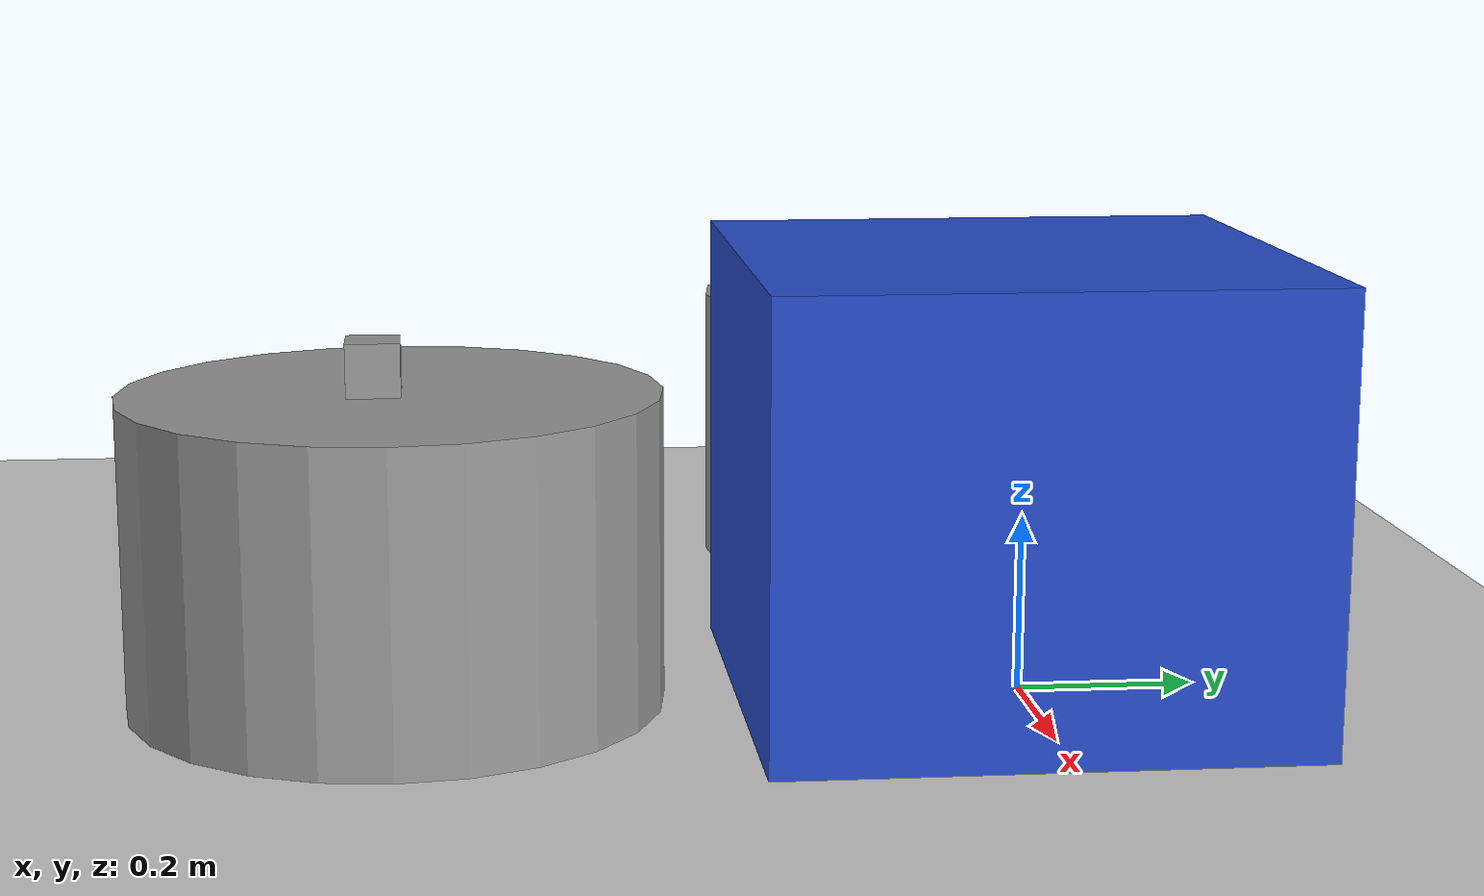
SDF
<sdf version="1.7">
 <world name="default">
  <turnGravityOff>true</turnGravityOff>
  <light name="sun" type="directional">
   <pose>0 0 10 0 -0 0</pose>
   <diffuse>0.8 0.8 0.8 1</diffuse>
   <specular>0.2 0.2 0.2 1</specular>
   <attenuation>
    <range>1000</range>
    <constant>0.9</constant>
    <linear>0.01</linear>
    <quadratic>0.001</quadratic>
   </attenuation>
   <direction>-0.5 0.1 -0.9</direction>
   <spot><inner_angle>0</inner_angle><outer_angle>0</outer_angle><falloff>0</falloff></spot>
  </light>
  <model name="ground_plane">
   <static>1</static>
   <link name="link">
    <collision name="collision">
     <geometry><plane><normal>0 0 1</normal><size>100 100</size></plane></geometry>
     <surface>
      <contact><collide_bitmask>65535</collide_bitmask></contact>
      <friction><ode><mu>100</mu><mu2>50</mu2></ode></friction>
     </surface>
    </collision>
    <visual name="visual">
     <cast_shadows>0</cast_shadows>
     <geometry><plane><normal>0 0 1</normal><size>100 100</size></plane></geometry>
     <material>
      <script><uri>file://media/materials/scripts/gazebo.material</uri><name>Gazebo/Grey</name></script>
     </material>
    </visual>
   </link>
  </model>
  <gravity>0 0 -9.8</gravity>
  <magnetic_field>6e-06 2.3e-05 -4.2e-05</magnetic_field>
  <atmosphere type="adiabatic"/>
  <physics type="ode">
   <max_step_size>0.001</max_step_size>
   <real_time_factor>1</real_time_factor>
   <real_time_update_rate>1000</real_time_update_rate>
  </physics>
  <scene><ambient>0.4 0.4 0.4 1</ambient><background>0.7 0.7 0.7 1</background><shadows>1</shadows></scene>
  <spherical_coordinates>
   <surface_model>EARTH_WGS84</surface_model>
   <latitude_deg>0</latitude_deg>
   <longitude_deg>0</longitude_deg>
   <elevation>0</elevation>
   <heading_deg>0</heading_deg>
  </spherical_coordinates>
  <model name="unit_boxx">
   <link name="link">
    <inertial>
     <mass>1</mass>
     <inertia>
      <ixx>0.166667</ixx>
      <ixy>0</ixy>
      <ixz>0</ixz>
      <iyy>0.166667</iyy>
      <iyz>0</iyz>
      <izz>0.166667</izz>
     </inertia>
    </inertial>
    <visual name="visual">
     <geometry><box><size>0.6 0.6 0.5</size></box></geometry>
     <material>
      <script><name>Gazebo/Blue</name><uri>file://media/materials/scripts/gazebo.material</uri></script>
      <shader type="pixel"><normal_map>__default__</normal_map></shader>
      <ambient>0.3 0.3 0.3 1</ambient>
      <diffuse>0.7 0.7 0.7 1</diffuse>
      <specular>0.01 0.01 0.01 1</specular>
      <emissive>0 0 0 1</emissive>
     </material>
     <pose>0 0 -0.25 0 -0 0</pose>
    </visual>
    <collision name="collision">
     <pose>0 0 -0.25 0 -0 0</pose>
     <geometry><box><size>0.6 0.6 0.5</size></box></geometry>
     <surface>
      <friction>
       <ode><mu>1</mu><mu2>1</mu2><fdir1>0 0 0</fdir1><slip1>0</slip1><slip2>0</slip2></ode>
       <torsional>
        <coefficient>1</coefficient>
        <patch_radius>0</patch_radius>
        <surface_radius>0</surface_radius>
        <use_patch_radius>1</use_patch_radius>
        <ode><slip>0</slip></ode>
       </torsional>
      </friction>
      <bounce><restitution_coefficient>0</restitution_coefficient><threshold>1e+06</threshold></bounce>
      <contact>
       <collide_without_contact>0</collide_without_contact>
       <collide_without_contact_bitmask>1</collide_without_contact_bitmask>
       <collide_bitmask>1</collide_bitmask>
       <ode>
        <soft_cfm>0</soft_cfm>
        <soft_erp>0.2</soft_erp>
        <kp>1e+13</kp>
        <kd>1</kd>
        <max_vel>0.01</max_vel>
        <min_depth>0</min_depth>
       </ode>
       <bullet>
        <split_impulse>1</split_impulse>
        <split_impulse_penetration_threshold>-0.01</split_impulse_penetration_threshold>
        <soft_cfm>0</soft_cfm>
        <soft_erp>0.2</soft_erp>
        <kp>1e+13</kp>
        <kd>1</kd>
       </bullet>
      </contact>
     </surface>
    </collision>
   </link>
   <static>1</static>
   <pose>0.00872 -0.022663 0.5 0 -0 0</pose>
  </model>
  <model name="mini">
   <link name="link">
    <inertial>
     <mass>1</mass>
     <inertia>
      <ixx>0.166667</ixx>
      <ixy>0</ixy>
      <ixz>0</ixz>
      <iyy>0.166667</iyy>
      <iyz>0</iyz>
      <izz>0.166667</izz>
     </inertia>
    </inertial>
    <visual name="visual">
     <geometry><box><size>0.06 0.06 0.06</size></box></geometry>
     <material>
      <script><name>Gazebo/Grey</name><uri>file://media/materials/scripts/gazebo.material</uri></script>
      <shader type="pixel"><normal_map>__default__</normal_map></shader>
      <ambient>0.3 0.3 0.3 1</ambient>
      <diffuse>0.7 0.7 0.7 1</diffuse>
      <specular>0.01 0.01 0.01 1</specular>
      <emissive>0 0 0 1</emissive>
     </material>
    </visual>
    <collision name="collision">
     <geometry><box><size>0.06 0.06 0.06</size></box></geometry>
     <surface>
      <friction>
       <ode><mu>1</mu><mu2>1</mu2><fdir1>0 0 0</fdir1><slip1>0</slip1><slip2>0</slip2></ode>
       <torsional>
        <coefficient>1</coefficient>
        <patch_radius>0</patch_radius>
        <surface_radius>0</surface_radius>
        <use_patch_radius>1</use_patch_radius>
        <ode><slip>0</slip></ode>
       </torsional>
      </friction>
      <bounce><restitution_coefficient>0</restitution_coefficient><threshold>1e+06</threshold></bounce>
      <contact>
       <collide_without_contact>0</collide_without_contact>
       <collide_without_contact_bitmask>1</collide_without_contact_bitmask>
       <collide_bitmask>1</collide_bitmask>
       <ode>
        <soft_cfm>0</soft_cfm>
        <soft_erp>0.2</soft_erp>
        <kp>1e+13</kp>
        <kd>1</kd>
        <max_vel>0.01</max_vel>
        <min_depth>0</min_depth>
       </ode>
       <bullet>
        <split_impulse>1</split_impulse>
        <split_impulse_penetration_threshold>-0.01</split_impulse_penetration_threshold>
        <soft_cfm>0</soft_cfm>
        <soft_erp>0.2</soft_erp>
        <kp>1e+13</kp>
        <kd>1</kd>
       </bullet>
      </contact>
     </surface>
    </collision>
   </link>
   <static>0</static>
   <pose>-0.013351 -0.719948 0.379933 1.7e-05 1.8e-05 -0.001517</pose>
  </model>
  <model name="unit_cylinder_clone1">
   <link name="link">
    <inertial>
     <mass>1</mass>
     <inertia><ixx>0.145833</ixx><ixy>0</ixy><ixz>0</ixz><iyy>0.145833</iyy><iyz>0</iyz><izz>0.125</izz></inertia>
    </inertial>
    <visual name="visual">
     <geometry><cylinder><radius>0.3</radius><length>0.35</length></cylinder></geometry>
     <material>
      <script><name>Gazebo/Grey</name><uri>file://media/materials/scripts/gazebo.material</uri></script>
      <shader type="pixel"><normal_map>__default__</normal_map></shader>
      <ambient>0.3 0.3 0.3 1</ambient>
      <diffuse>0.7 0.7 0.7 1</diffuse>
      <specular>0.01 0.01 0.01 1</specular>
      <emissive>0 0 0 1</emissive>
     </material>
     <pose>0 0 -0.325 0 -0 0</pose>
    </visual>
    <collision name="collision">
     <pose>0 0 -0.325 0 -0 0</pose>
     <geometry><cylinder><radius>0.3</radius><length>0.35</length></cylinder></geometry>
     <surface>
      <friction>
       <ode><mu>1</mu><mu2>1</mu2><fdir1>0 0 0</fdir1><slip1>0</slip1><slip2>0</slip2></ode>
       <torsional>
        <coefficient>1</coefficient>
        <patch_radius>0</patch_radius>
        <surface_radius>0</surface_radius>
        <use_patch_radius>1</use_patch_radius>
        <ode><slip>0</slip></ode>
       </torsional>
      </friction>
      <bounce><restitution_coefficient>0</restitution_coefficient><threshold>1e+06</threshold></bounce>
      <contact>
       <collide_without_contact>0</collide_without_contact>
       <collide_without_contact_bitmask>1</collide_without_contact_bitmask>
       <collide_bitmask>1</collide_bitmask>
       <ode>
        <soft_cfm>0</soft_cfm>
        <soft_erp>0.2</soft_erp>
        <kp>1e+13</kp>
        <kd>1</kd>
        <max_vel>0.01</max_vel>
        <min_depth>0</min_depth>
       </ode>
       <bullet>
        <split_impulse>1</split_impulse>
        <split_impulse_penetration_threshold>-0.01</split_impulse_penetration_threshold>
        <soft_cfm>0</soft_cfm>
        <soft_erp>0.2</soft_erp>
        <kp>1e+13</kp>
        <kd>1</kd>
       </bullet>
      </contact>
     </surface>
    </collision>
   </link>
   <static>0</static>
   <pose>-0.700267 0.011643 0.499998 -1e-06 -1e-06 0</pose>
  </model>
  <model name="unit_cylinder_clone1_clone">
   <link name="link">
    <inertial>
     <mass>1</mass>
     <inertia><ixx>0.145833</ixx><ixy>0</ixy><ixz>0</ixz><iyy>0.145833</iyy><iyz>0</iyz><izz>0.125</izz></inertia>
    </inertial>
    <visual name="visual">
     <geometry><cylinder><radius>0.3</radius><length>0.35</length></cylinder></geometry>
     <material>
      <script><name>Gazebo/Grey</name><uri>file://media/materials/scripts/gazebo.material</uri></script>
      <shader type="pixel"><normal_map>__default__</normal_map></shader>
      <ambient>0.3 0.3 0.3 1</ambient>
      <diffuse>0.7 0.7 0.7 1</diffuse>
      <specular>0.01 0.01 0.01 1</specular>
      <emissive>0 0 0 1</emissive>
     </material>
     <pose>0 0 -0.325 0 -0 0</pose>
    </visual>
    <collision name="collision">
     <pose>0 0 -0.325 0 -0 0</pose>
     <geometry><cylinder><radius>0.3</radius><length>0.35</length></cylinder></geometry>
     <surface>
      <friction>
       <ode><mu>1</mu><mu2>1</mu2><fdir1>0 0 0</fdir1><slip1>0</slip1><slip2>0</slip2></ode>
       <torsional>
        <coefficient>1</coefficient>
        <patch_radius>0</patch_radius>
        <surface_radius>0</surface_radius>
        <use_patch_radius>1</use_patch_radius>
        <ode><slip>0</slip></ode>
       </torsional>
      </friction>
      <bounce><restitution_coefficient>0</restitution_coefficient><threshold>1e+06</threshold></bounce>
      <contact>
       <collide_without_contact>0</collide_without_contact>
       <collide_without_contact_bitmask>1</collide_without_contact_bitmask>
       <collide_bitmask>1</collide_bitmask>
       <ode>
        <soft_cfm>0</soft_cfm>
        <soft_erp>0.2</soft_erp>
        <kp>1e+13</kp>
        <kd>1</kd>
        <max_vel>0.01</max_vel>
        <min_depth>0</min_depth>
       </ode>
       <bullet>
        <split_impulse>1</split_impulse>
        <split_impulse_penetration_threshold>-0.01</split_impulse_penetration_threshold>
        <soft_cfm>0</soft_cfm>
        <soft_erp>0.2</soft_erp>
        <kp>1e+13</kp>
        <kd>1</kd>
       </bullet>
      </contact>
     </surface>
    </collision>
   </link>
   <static>0</static>
   <pose>-0.021779 -0.702182 0.5 0 -0 -2e-06</pose>
  </model>
 </world>
</sdf>
